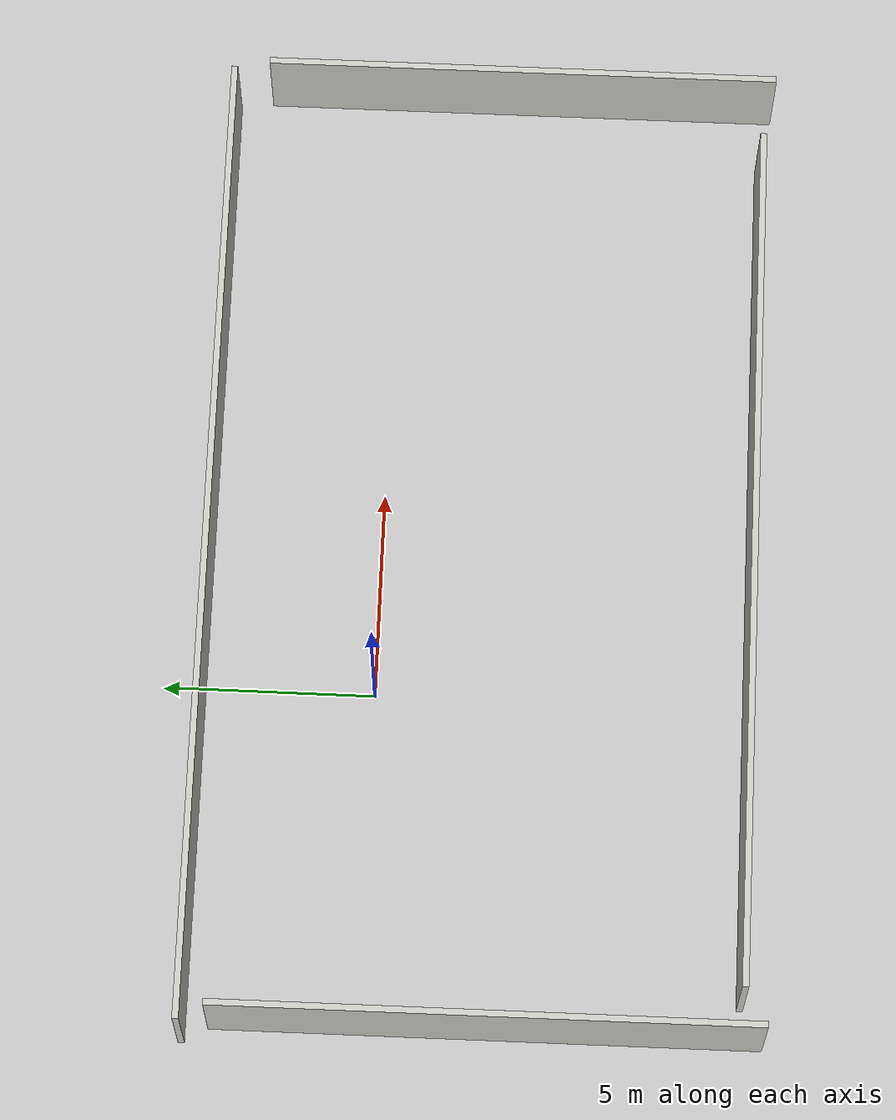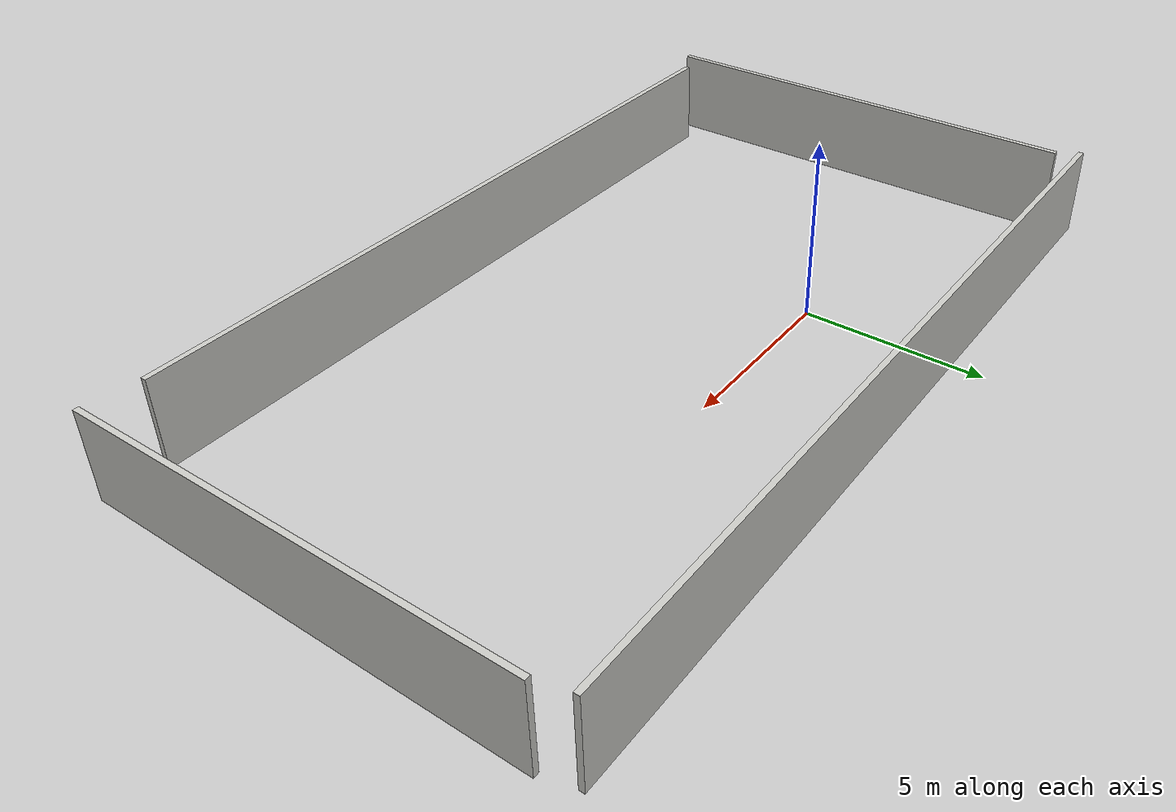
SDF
<?xml version='1.0'?>
<sdf version='1.7'>
  <model name='my_world'>
    <pose>3.40483 -2.56027 0 0 -0 0</pose>
    <link name='Wall_10'>
      <collision name='Wall_10_Collision'>
        <geometry>
          <box>
            <size>12.25 0.15 2.5</size>
          </box>
        </geometry>
        <pose>0 0 1.25 0 -0 0</pose>
      </collision>
      <visual name='Wall_10_Visual'>
        <pose>0 0 1.25 0 -0 0</pose>
        <geometry>
          <box>
            <size>12.25 0.15 2.5</size>
          </box>
        </geometry>
        <material>
          <script>
            <uri>file://media/materials/scripts/gazebo.material</uri>
            <name>Gazebo/CeilingTiled</name>
          </script>
          <ambient>0.921569 0.807843 0.615686 1</ambient>
        </material>
        <meta>
          <layer>0</layer>
        </meta>
      </visual>
      <pose>11.8078 -0.331214 0 0 -0 -1.5708</pose>
    </link>
    <link name='Wall_12'>
      <collision name='Wall_12_Collision'>
        <geometry>
          <box>
            <size>12.75 0.15 2.5</size>
          </box>
        </geometry>
        <pose>0 0 1.25 0 -0 0</pose>
      </collision>
      <visual name='Wall_12_Visual'>
        <pose>0 0 1.25 0 -0 0</pose>
        <geometry>
          <box>
            <size>12.75 0.15 2.5</size>
          </box>
        </geometry>
        <material>
          <script>
            <uri>file://media/materials/scripts/gazebo.material</uri>
            <name>Gazebo/CeilingTiled</name>
          </script>
          <ambient>0.921569 0.807843 0.615686 1</ambient>
        </material>
        <meta>
          <layer>0</layer>
        </meta>
      </visual>
      <pose>-11.4713 -0.336492 0 0 -0 -1.5708</pose>
    </link>
    <link name='Wall_14'>
      <collision name='Wall_14_Collision'>
        <geometry>
          <box>
            <size>21 0.15 2.5</size>
          </box>
        </geometry>
        <pose>0 0 1.25 0 -0 0</pose>
      </collision>
      <visual name='Wall_14_Visual'>
        <pose>0 0 1.25 0 -0 0</pose>
        <geometry>
          <box>
            <size>21 0.15 2.5</size>
          </box>
        </geometry>
        <material>
          <script>
            <uri>file://media/materials/scripts/gazebo.material</uri>
            <name>Gazebo/CeilingTiled</name>
          </script>
          <ambient>0.996078 0.47451 0.0196078 1</ambient>
        </material>
        <meta>
          <layer>0</layer>
        </meta>
      </visual>
      <pose>-0.128629 -6.18081 0 0 -0 0</pose>
    </link>
    <link name='Wall_8'>
      <collision name='Wall_8_Collision'>
        <geometry>
          <box>
            <size>23.5 0.15 2.5</size>
          </box>
        </geometry>
        <pose>0 0 1.25 0 -0 0</pose>
      </collision>
      <visual name='Wall_8_Visual'>
        <pose>0 0 1.25 0 -0 0</pose>
        <geometry>
          <box>
            <size>23.5 0.15 2.5</size>
          </box>
        </geometry>
        <material>
          <script>
            <uri>file://media/materials/scripts/gazebo.material</uri>
            <name>Gazebo/CeilingTiled</name>
          </script>
          <ambient>0.996078 0.47451 0.0196078 1</ambient>
        </material>
        <meta>
          <layer>0</layer>
        </meta>
      </visual>
      <pose>-0.132829 6.63649 0 0 -0 0</pose>
    </link>
    <static>1</static>
  </model>
</sdf>
